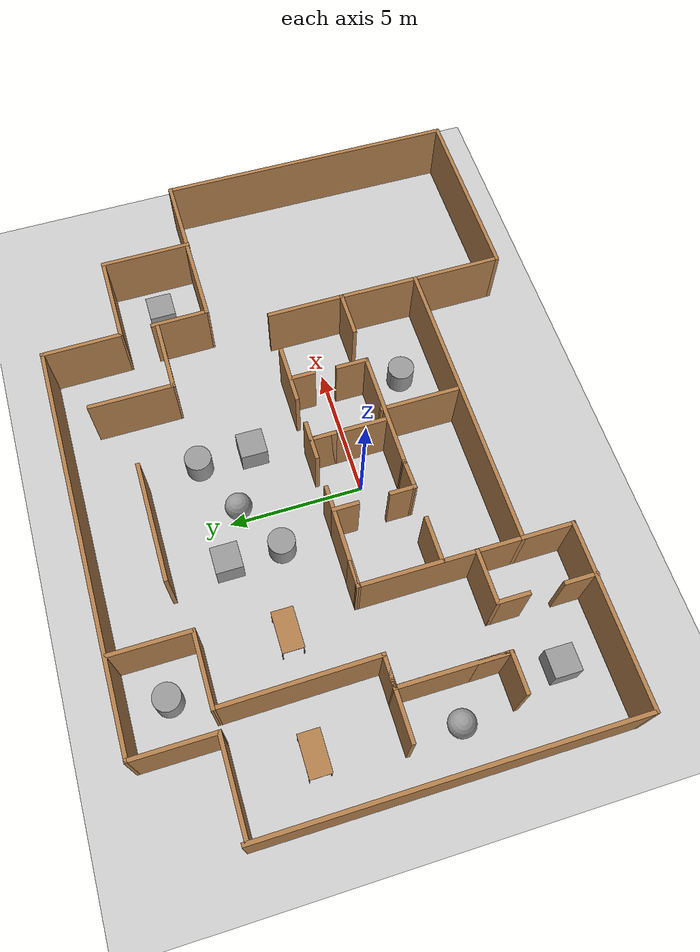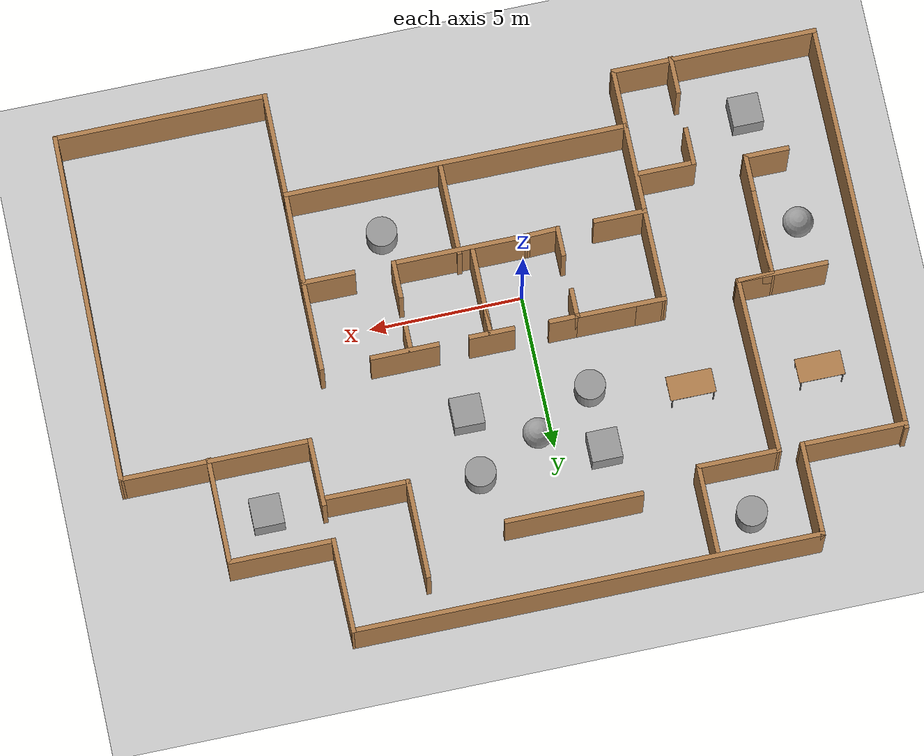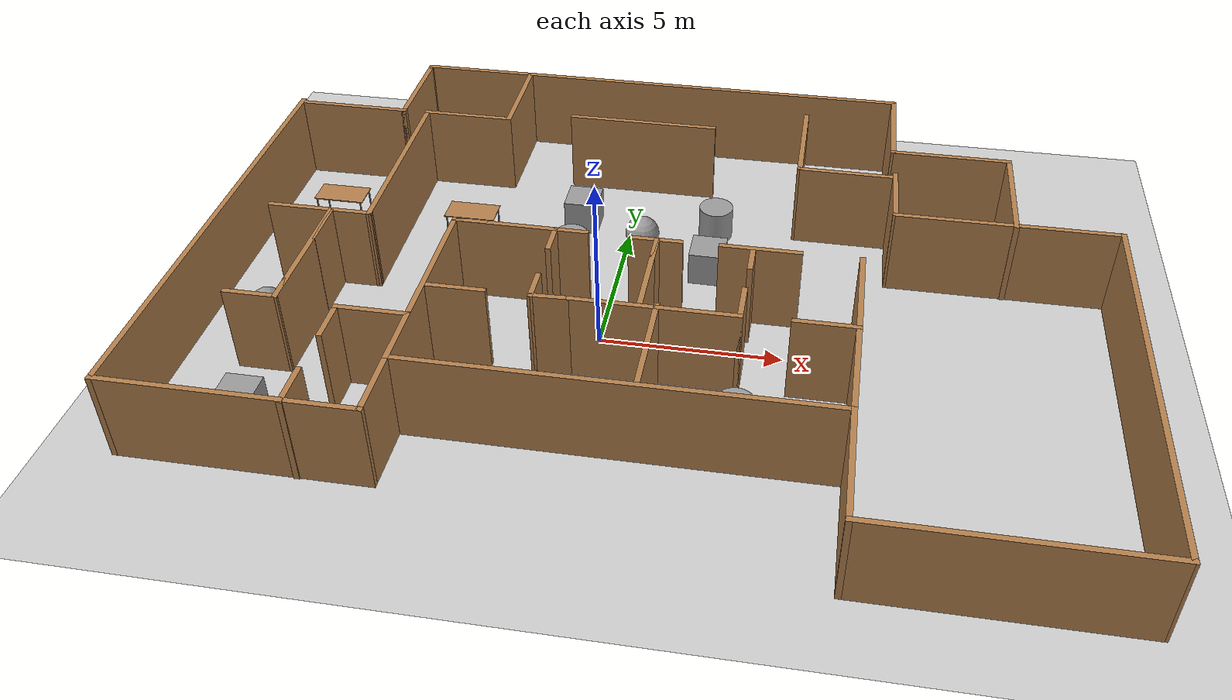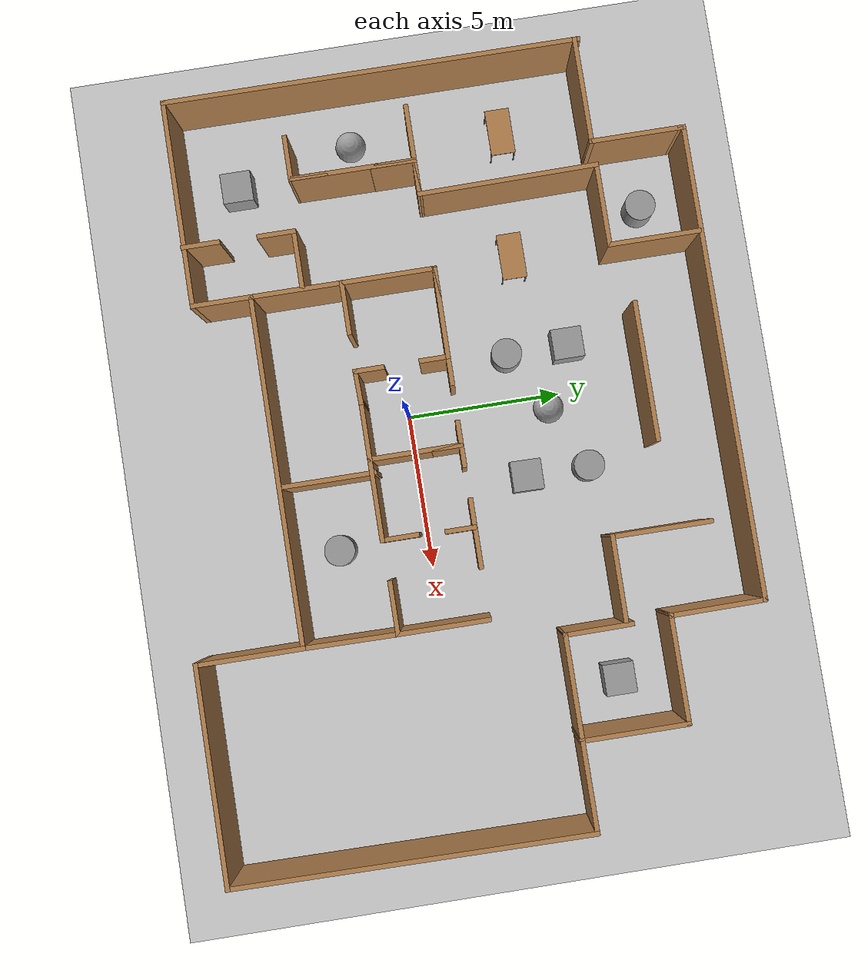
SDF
<sdf version="1.7">
 <world name="default">
  <light name="sun" type="directional">
   <pose>0 0 10 0 -0 0</pose>
   <diffuse>0.8 0.8 0.8 1</diffuse>
   <specular>0.2 0.2 0.2 1</specular>
   <attenuation>
    <range>1000</range>
    <constant>0.9</constant>
    <linear>0.01</linear>
    <quadratic>0.001</quadratic>
   </attenuation>
   <direction>-0.5 0.1 -0.9</direction>
   <spot><inner_angle>0</inner_angle><outer_angle>0</outer_angle><falloff>0</falloff></spot>
  </light>
  <model name="ground_plane">
   <static>1</static>
   <link name="link">
    <collision name="collision">
     <geometry><plane><normal>0 0 1</normal><size>100 100</size></plane></geometry>
     <surface>
      <contact><collide_bitmask>65535</collide_bitmask></contact>
      <friction><ode><mu>100</mu><mu2>50</mu2></ode></friction>
     </surface>
    </collision>
    <visual name="visual">
     <cast_shadows>0</cast_shadows>
     <geometry><plane><normal>0 0 1</normal><size>100 100</size></plane></geometry>
     <material>
      <script><uri>file://media/materials/scripts/gazebo.material</uri><name>Gazebo/Grey</name></script>
     </material>
    </visual>
   </link>
  </model>
  <gravity>0 0 -9.8</gravity>
  <magnetic_field>6e-06 2.3e-05 -4.2e-05</magnetic_field>
  <atmosphere type="adiabatic"/>
  <physics type="ode">
   <max_step_size>0.001</max_step_size>
   <real_time_factor>1</real_time_factor>
   <real_time_update_rate>1000</real_time_update_rate>
  </physics>
  <scene><ambient>0.4 0.4 0.4 1</ambient><background>0.7 0.7 0.7 1</background><shadows>1</shadows></scene>
  <spherical_coordinates>
   <surface_model>EARTH_WGS84</surface_model>
   <latitude_deg>0</latitude_deg>
   <longitude_deg>0</longitude_deg>
   <elevation>0</elevation>
   <heading_deg>0</heading_deg>
  </spherical_coordinates>
  <audio><device>default</device></audio>
  <model name="kkbot_world">
   <pose>1.44254 1.20064 0 0 -0 0</pose>
   <link name="Wall_102">
    <collision name="Wall_102_Collision">
     <geometry><box><size>4.5 0.15 2.5</size></box></geometry>
     <pose>0 0 1.25 0 -0 0</pose>
    </collision>
    <visual name="Wall_102_Visual">
     <pose>0 0 1.25 0 -0 0</pose>
     <geometry><box><size>4.5 0.15 2.5</size></box></geometry>
     <material>
      <script><uri>file://media/materials/scripts/gazebo.material</uri><name>Gazebo/Wood</name></script>
      <ambient>1 1 1 1</ambient>
     </material>
     <meta><layer>0</layer></meta>
    </visual>
    <pose>0.28317 -2.57842 0 0 -0 0</pose>
   </link>
   <link name="Wall_104">
    <collision name="Wall_104_Collision">
     <geometry><box><size>1.75 0.15 2.5</size></box></geometry>
     <pose>0 0 1.25 0 -0 0</pose>
    </collision>
    <visual name="Wall_104_Visual">
     <pose>0 0 1.25 0 -0 0</pose>
     <geometry><box><size>1.75 0.15 2.5</size></box></geometry>
     <material>
      <script><uri>file://media/materials/scripts/gazebo.material</uri><name>Gazebo/Wood</name></script>
      <ambient>1 1 1 1</ambient>
     </material>
     <meta><layer>0</layer></meta>
    </visual>
    <pose>4.59827 -2.53719 0 0 -0 0</pose>
   </link>
   <link name="Wall_105">
    <collision name="Wall_105_Collision">
     <geometry><box><size>3 0.15 2.5</size></box></geometry>
     <pose>0 0 1.25 0 -0 0</pose>
    </collision>
    <visual name="Wall_105_Visual">
     <pose>0 0 1.25 0 -0 0</pose>
     <geometry><box><size>3 0.15 2.5</size></box></geometry>
     <material>
      <script><uri>file://media/materials/scripts/gazebo.material</uri><name>Gazebo/Wood</name></script>
      <ambient>1 1 1 1</ambient>
     </material>
     <meta><layer>0</layer></meta>
    </visual>
    <pose>5.39827 -1.11218 0 0 -0 1.5708</pose>
   </link>
   <link name="Wall_107">
    <collision name="Wall_107_Collision">
     <geometry><box><size>2.25 0.15 2.5</size></box></geometry>
     <pose>0 0 1.25 0 -0 0</pose>
    </collision>
    <visual name="Wall_107_Visual">
     <pose>0 0 1.25 0 -0 0</pose>
     <geometry><box><size>2.25 0.15 2.5</size></box></geometry>
     <material>
      <script><uri>file://media/materials/scripts/gazebo.material</uri><name>Gazebo/Wood</name></script>
      <ambient>1 1 1 1</ambient>
     </material>
     <meta><layer>0</layer></meta>
    </visual>
    <pose>2.70417 0.32848 0 0 -0 0</pose>
   </link>
   <link name="Wall_113">
    <collision name="Wall_113_Collision">
     <geometry><box><size>1 0.15 2.5</size></box></geometry>
     <pose>0 0 1.25 0 -0 0</pose>
    </collision>
    <visual name="Wall_113_Visual">
     <pose>0 0 1.25 0 -0 0</pose>
     <geometry><box><size>1 0.15 2.5</size></box></geometry>
     <material>
      <script><uri>file://media/materials/scripts/gazebo.material</uri><name>Gazebo/Wood</name></script>
      <ambient>1 1 1 1</ambient>
     </material>
     <meta><layer>0</layer></meta>
    </visual>
    <pose>-2.89655 -0.091787 0 0 -0 -1.5708</pose>
   </link>
   <link name="Wall_115">
    <collision name="Wall_115_Collision">
     <geometry><box><size>1 0.15 2.5</size></box></geometry>
     <pose>0 0 1.25 0 -0 0</pose>
    </collision>
    <visual name="Wall_115_Visual">
     <pose>0 0 1.25 0 -0 0</pose>
     <geometry><box><size>1 0.15 2.5</size></box></geometry>
     <material>
      <script><uri>file://media/materials/scripts/gazebo.material</uri><name>Gazebo/Wood</name></script>
      <ambient>1 1 1 1</ambient>
     </material>
     <meta><layer>0</layer></meta>
    </visual>
    <pose>-0.090895 -0.13829 0 0 -0 -1.5708</pose>
   </link>
   <link name="Wall_117">
    <collision name="Wall_117_Collision">
     <geometry><box><size>1 0.15 2.5</size></box></geometry>
     <pose>0 0 1.25 0 -0 0</pose>
    </collision>
    <visual name="Wall_117_Visual">
     <pose>0 0 1.25 0 -0 0</pose>
     <geometry><box><size>1 0.15 2.5</size></box></geometry>
     <material>
      <script><uri>file://media/materials/scripts/gazebo.material</uri><name>Gazebo/Wood</name></script>
      <ambient>1 1 1 1</ambient>
     </material>
     <meta><layer>0</layer></meta>
    </visual>
    <pose>2.5055 -0.115038 0 0 -0 -1.5708</pose>
   </link>
   <link name="Wall_119">
    <collision name="Wall_119_Collision">
     <geometry><box><size>1 0.15 2.5</size></box></geometry>
     <pose>0 0 1.25 0 -0 0</pose>
    </collision>
    <visual name="Wall_119_Visual">
     <pose>0 0 1.25 0 -0 0</pose>
     <geometry><box><size>1 0.15 2.5</size></box></geometry>
     <material>
      <script><uri>file://media/materials/scripts/gazebo.material</uri><name>Gazebo/Wood</name></script>
      <ambient>1 1 1 1</ambient>
     </material>
     <meta><layer>0</layer></meta>
    </visual>
    <pose>-2.8888 -2.18695 0 0 -0 1.5708</pose>
   </link>
   <link name="Wall_121">
    <collision name="Wall_121_Collision">
     <geometry><box><size>3.00216 0.15 2.5</size></box></geometry>
     <pose>0 0 1.25 0 -0 0</pose>
    </collision>
    <visual name="Wall_121_Visual">
     <pose>0 0 1.25 0 -0 0</pose>
     <geometry><box><size>3.00216 0.15 2.5</size></box></geometry>
     <material>
      <script><uri>file://media/materials/scripts/gazebo.material</uri><name>Gazebo/Wood</name></script>
      <ambient>1 1 1 1</ambient>
     </material>
     <meta><layer>0</layer></meta>
    </visual>
    <pose>-0.090895 -1.13937 0 0 -0 1.5708</pose>
   </link>
   <link name="Wall_125">
    <collision name="Wall_125_Collision">
     <geometry><box><size>1.25 0.15 2.5</size></box></geometry>
     <pose>0 0 1.25 0 -0 0</pose>
    </collision>
    <visual name="Wall_125_Visual">
     <pose>0 0 1.25 0 -0 0</pose>
     <geometry><box><size>1.25 0.15 2.5</size></box></geometry>
     <material>
      <script><uri>file://media/materials/scripts/gazebo.material</uri><name>Gazebo/Wood</name></script>
      <ambient>1 1 1 1</ambient>
     </material>
     <meta><layer>0</layer></meta>
    </visual>
    <pose>2.45817 -2.02842 0 0 -0 1.5708</pose>
   </link>
   <link name="Wall_127">
    <collision name="Wall_127_Collision">
     <geometry><box><size>1.5 0.15 2.5</size></box></geometry>
     <pose>0 0 1.25 0 -0 0</pose>
    </collision>
    <visual name="Wall_127_Visual">
     <pose>0 0 1.25 0 -0 0</pose>
     <geometry><box><size>1.5 0.15 2.5</size></box></geometry>
     <material>
      <script><uri>file://media/materials/scripts/gazebo.material</uri><name>Gazebo/Wood</name></script>
      <ambient>1 1 1 1</ambient>
     </material>
     <meta><layer>0</layer></meta>
    </visual>
    <pose>-0.128935 0.309962 0 0 -0 0</pose>
   </link>
   <link name="Wall_132">
    <collision name="Wall_132_Collision">
     <geometry><box><size>1.75 0.15 2.5</size></box></geometry>
     <pose>0 0 1.25 0 -0 0</pose>
    </collision>
    <visual name="Wall_132_Visual">
     <pose>0 0 1.25 0 -0 0</pose>
     <geometry><box><size>1.75 0.15 2.5</size></box></geometry>
     <material>
      <script><uri>file://media/materials/scripts/gazebo.material</uri><name>Gazebo/Wood</name></script>
      <ambient>1 1 1 1</ambient>
     </material>
     <meta><layer>0</layer></meta>
    </visual>
    <pose>-4.92622 -2.60969 0 0 -0 0</pose>
   </link>
   <link name="Wall_135">
    <collision name="Wall_135_Collision">
     <geometry><box><size>1.14753 0.15 2.5</size></box></geometry>
     <pose>0 0 1.25 0 -0 0</pose>
    </collision>
    <visual name="Wall_135_Visual">
     <pose>0 0 1.25 0 -0 0</pose>
     <geometry><box><size>1.14753 0.15 2.5</size></box></geometry>
     <material>
      <script><uri>file://media/materials/scripts/gazebo.material</uri><name>Gazebo/Wood</name></script>
      <ambient>1 1 1 1</ambient>
     </material>
     <meta><layer>0</layer></meta>
    </visual>
    <pose>-2.39032 -2.59518 0 0 -0 0.033621</pose>
   </link>
   <link name="Wall_137">
    <collision name="Wall_137_Collision">
     <geometry><box><size>2.98342 0.15 2.5</size></box></geometry>
     <pose>0 0 1.25 0 -0 0</pose>
    </collision>
    <visual name="Wall_137_Visual">
     <pose>0 0 1.25 0 -0 0</pose>
     <geometry><box><size>2.98342 0.15 2.5</size></box></geometry>
     <material>
      <script><uri>file://media/materials/scripts/gazebo.material</uri><name>Gazebo/Wood</name></script>
      <ambient>1 1 1 1</ambient>
     </material>
     <meta><layer>0</layer></meta>
    </visual>
    <pose>-4.31323 0.341621 0 0 -0 -0.005935</pose>
   </link>
   <link name="Wall_139">
    <collision name="Wall_139_Collision">
     <geometry><box><size>1 0.15 2.5</size></box></geometry>
     <pose>0 0 1.25 0 -0 0</pose>
    </collision>
    <visual name="Wall_139_Visual">
     <pose>0 0 1.25 0 -0 0</pose>
     <geometry><box><size>1 0.15 2.5</size></box></geometry>
     <material>
      <script><uri>file://media/materials/scripts/gazebo.material</uri><name>Gazebo/Wood</name></script>
      <ambient>1 1 1 1</ambient>
     </material>
     <meta><layer>0</layer></meta>
    </visual>
    <pose>-2.47155 0.333213 0 0 -0 0</pose>
   </link>
   <link name="Wall_146">
    <collision name="Wall_146_Collision">
     <geometry><box><size>3.5 0.15 2.5</size></box></geometry>
     <pose>0 0 1.25 0 -0 0</pose>
    </collision>
    <visual name="Wall_146_Visual">
     <pose>0 0 1.25 0 -0 0</pose>
     <geometry><box><size>3.5 0.15 2.5</size></box></geometry>
     <material>
      <script><uri>file://media/materials/scripts/gazebo.material</uri><name>Gazebo/Wood</name></script>
      <ambient>1 1 1 1</ambient>
     </material>
     <meta><layer>0</layer></meta>
    </visual>
    <pose>7.82117 5.88656 0 0 -0 0</pose>
   </link>
   <link name="Wall_147">
    <collision name="Wall_147_Collision">
     <geometry><box><size>3.5 0.15 2.5</size></box></geometry>
     <pose>0 0 1.25 0 -0 0</pose>
    </collision>
    <visual name="Wall_147_Visual">
     <pose>0 0 1.25 0 -0 0</pose>
     <geometry><box><size>3.5 0.15 2.5</size></box></geometry>
     <material>
      <script><uri>file://media/materials/scripts/gazebo.material</uri><name>Gazebo/Wood</name></script>
      <ambient>1 1 1 1</ambient>
     </material>
     <meta><layer>0</layer></meta>
    </visual>
    <pose>9.49617 4.21156 0 0 -0 -1.5708</pose>
   </link>
   <link name="Wall_149">
    <collision name="Wall_149_Collision">
     <geometry><box><size>6.25 0.15 2.5</size></box></geometry>
     <pose>0 0 1.25 0 -0 0</pose>
    </collision>
    <visual name="Wall_149_Visual">
     <pose>0 0 1.25 0 -0 0</pose>
     <geometry><box><size>6.25 0.15 2.5</size></box></geometry>
     <material>
      <script><uri>file://media/materials/scripts/gazebo.material</uri><name>Gazebo/Wood</name></script>
      <ambient>1 1 1 1</ambient>
     </material>
     <meta><layer>0</layer></meta>
    </visual>
    <pose>9.2792 2.56238 0 0 -0 0</pose>
   </link>
   <link name="Wall_151">
    <collision name="Wall_151_Collision">
     <geometry><box><size>3.11359 0.15 2.5</size></box></geometry>
     <pose>0 0 1.25 0 -0 0</pose>
    </collision>
    <visual name="Wall_151_Visual">
     <pose>0 0 1.25 0 -0 0</pose>
     <geometry><box><size>3.11359 0.15 2.5</size></box></geometry>
     <material>
      <script><uri>file://media/materials/scripts/gazebo.material</uri><name>Gazebo/Wood</name></script>
      <ambient>1 1 1 1</ambient>
     </material>
     <meta><layer>0</layer></meta>
    </visual>
    <pose>6.13313 7.36829 0 0 -0 -1.56199</pose>
   </link>
   <link name="Wall_153">
    <collision name="Wall_153_Collision">
     <geometry><box><size>2.24219 0.15 2.5</size></box></geometry>
     <pose>0 0 1.25 0 -0 0</pose>
    </collision>
    <visual name="Wall_153_Visual">
     <pose>0 0 1.25 0 -0 0</pose>
     <geometry><box><size>2.24219 0.15 2.5</size></box></geometry>
     <material>
      <script><uri>file://media/materials/scripts/gazebo.material</uri><name>Gazebo/Wood</name></script>
      <ambient>1 1 1 1</ambient>
     </material>
     <meta><layer>0</layer></meta>
    </visual>
    <pose>6.21979 3.60844 0 0 -0 -1.56179</pose>
   </link>
   <link name="Wall_155">
    <collision name="Wall_155_Collision">
     <geometry><box><size>2.76359 0.15 2.5</size></box></geometry>
     <pose>0 0 1.25 0 -0 0</pose>
    </collision>
    <visual name="Wall_155_Visual">
     <pose>0 0 1.25 0 -0 0</pose>
     <geometry><box><size>2.76359 0.15 2.5</size></box></geometry>
     <material>
      <script><uri>file://media/materials/scripts/gazebo.material</uri><name>Gazebo/Wood</name></script>
      <ambient>1 1 1 1</ambient>
     </material>
     <meta><layer>0</layer></meta>
    </visual>
    <pose>4.76923 4.4969 0 0 -0 -0.005187</pose>
   </link>
   <link name="Wall_157">
    <collision name="Wall_157_Collision">
     <geometry><box><size>3.25 0.15 2.5</size></box></geometry>
     <pose>0 0 1.25 0 -0 0</pose>
    </collision>
    <visual name="Wall_157_Visual">
     <pose>0 0 1.25 0 -0 0</pose>
     <geometry><box><size>3.25 0.15 2.5</size></box></geometry>
     <material>
      <script><uri>file://media/materials/scripts/gazebo.material</uri><name>Gazebo/Wood</name></script>
      <ambient>1 1 1 1</ambient>
     </material>
     <meta><layer>0</layer></meta>
    </visual>
    <pose>3.46245 6.05368 0 0 -0 1.5708</pose>
   </link>
   <link name="Wall_159">
    <collision name="Wall_159_Collision">
     <geometry><box><size>2.75 0.15 2.5</size></box></geometry>
     <pose>0 0 1.25 0 -0 0</pose>
    </collision>
    <visual name="Wall_159_Visual">
     <pose>0 0 1.25 0 -0 0</pose>
     <geometry><box><size>2.75 0.15 2.5</size></box></geometry>
     <material>
      <script><uri>file://media/materials/scripts/gazebo.material</uri><name>Gazebo/Wood</name></script>
      <ambient>1 1 1 1</ambient>
     </material>
     <meta><layer>0</layer></meta>
    </visual>
    <pose>-6.91617 5.92406 0 0 -0 0</pose>
   </link>
   <link name="Wall_160">
    <collision name="Wall_160_Collision">
     <geometry><box><size>3 0.15 2.5</size></box></geometry>
     <pose>0 0 1.25 0 -0 0</pose>
    </collision>
    <visual name="Wall_160_Visual">
     <pose>0 0 1.25 0 -0 0</pose>
     <geometry><box><size>3 0.15 2.5</size></box></geometry>
     <material>
      <script><uri>file://media/materials/scripts/gazebo.material</uri><name>Gazebo/Wood</name></script>
      <ambient>1 1 1 1</ambient>
     </material>
     <meta><layer>0</layer></meta>
    </visual>
    <pose>-5.61617 7.34907 0 0 -0 1.5708</pose>
   </link>
   <link name="Wall_164">
    <collision name="Wall_164_Collision">
     <geometry><box><size>5.82064 0.15 2.5</size></box></geometry>
     <pose>0 0 1.25 0 -0 0</pose>
    </collision>
    <visual name="Wall_164_Visual">
     <pose>0 0 1.25 0 -0 0</pose>
     <geometry><box><size>5.82064 0.15 2.5</size></box></geometry>
     <material>
      <script><uri>file://media/materials/scripts/gazebo.material</uri><name>Gazebo/Wood</name></script>
      <ambient>1 1 1 1</ambient>
     </material>
     <meta><layer>0</layer></meta>
    </visual>
    <pose>-8.1856 3.08891 0 0 -0 -1.56001</pose>
   </link>
   <link name="Wall_165">
    <collision name="Wall_165_Collision">
     <geometry><box><size>3 0.15 2.5</size></box></geometry>
     <pose>0 0 1.25 0 -0 0</pose>
    </collision>
    <visual name="Wall_165_Visual">
     <pose>0 0 1.25 0 -0 0</pose>
     <geometry><box><size>3 0.15 2.5</size></box></geometry>
     <material>
      <script><uri>file://media/materials/scripts/gazebo.material</uri><name>Gazebo/Wood</name></script>
      <ambient>1 1 1 1</ambient>
     </material>
     <meta><layer>0</layer></meta>
    </visual>
    <pose>-9.58003 0.253755 0 0 -0 3.14159</pose>
   </link>
   <link name="Wall_167">
    <collision name="Wall_167_Collision">
     <geometry><box><size>4.10736 0.15 2.5</size></box></geometry>
     <pose>0 0 1.25 0 -0 0</pose>
    </collision>
    <visual name="Wall_167_Visual">
     <pose>0 0 1.25 0 -0 0</pose>
     <geometry><box><size>4.10736 0.15 2.5</size></box></geometry>
     <material>
      <script><uri>file://media/materials/scripts/gazebo.material</uri><name>Gazebo/Wood</name></script>
      <ambient>1 1 1 1</ambient>
     </material>
     <meta><layer>0</layer></meta>
    </visual>
    <pose>-9.26124 -1.72492 0 0 -0 -1.57394</pose>
   </link>
   <link name="Wall_168">
    <collision name="Wall_168_Collision">
     <geometry><box><size>1.5 0.15 2.5</size></box></geometry>
     <pose>0 0 1.25 0 -0 0</pose>
    </collision>
    <visual name="Wall_168_Visual">
     <pose>0 0 1.25 0 -0 0</pose>
     <geometry><box><size>1.5 0.15 2.5</size></box></geometry>
     <material>
      <script><uri>file://media/materials/scripts/gazebo.material</uri><name>Gazebo/Wood</name></script>
      <ambient>1 1 1 1</ambient>
     </material>
     <meta><layer>0</layer></meta>
    </visual>
    <pose>-9.94246 -3.70359 0 0 -0 3.14159</pose>
   </link>
   <link name="Wall_171">
    <collision name="Wall_171_Collision">
     <geometry><box><size>3 0.15 2.5</size></box></geometry>
     <pose>0 0 1.25 0 -0 0</pose>
    </collision>
    <visual name="Wall_171_Visual">
     <pose>0 0 1.25 0 -0 0</pose>
     <geometry><box><size>3 0.15 2.5</size></box></geometry>
     <material>
      <script><uri>file://media/materials/scripts/gazebo.material</uri><name>Gazebo/Wood</name></script>
      <ambient>1 1 1 1</ambient>
     </material>
     <meta><layer>0</layer></meta>
    </visual>
    <pose>0.341386 -3.92199 0 0 -0 -1.5708</pose>
   </link>
   <link name="Wall_173">
    <collision name="Wall_173_Collision">
     <geometry><box><size>3.11292 0.15 2.5</size></box></geometry>
     <pose>0 0 1.25 0 -0 0</pose>
    </collision>
    <visual name="Wall_173_Visual">
     <pose>0 0 1.25 0 -0 0</pose>
     <geometry><box><size>3.11292 0.15 2.5</size></box></geometry>
     <material>
      <script><uri>file://media/materials/scripts/gazebo.material</uri><name>Gazebo/Wood</name></script>
      <ambient>1 1 1 1</ambient>
     </material>
     <meta><layer>0</layer></meta>
    </visual>
    <pose>5.38417 -4.01858 0 0 -0 1.56128</pose>
   </link>
   <link name="Wall_175">
    <collision name="Wall_175_Collision">
     <geometry><box><size>4.5 0.15 2.5</size></box></geometry>
     <pose>0 0 1.25 0 -0 0</pose>
    </collision>
    <visual name="Wall_175_Visual">
     <pose>0 0 1.25 0 -0 0</pose>
     <geometry><box><size>4.5 0.15 2.5</size></box></geometry>
     <material>
      <script><uri>file://media/materials/scripts/gazebo.material</uri><name>Gazebo/Wood</name></script>
      <ambient>1 1 1 1</ambient>
     </material>
     <meta><layer>0</layer></meta>
    </visual>
    <pose>-1.49044 6.40325 0 0 -0 0</pose>
   </link>
   <link name="Wall_70">
    <collision name="Wall_70_Collision">
     <geometry><box><size>3.5 0.15 2.5</size></box></geometry>
     <pose>0 0 1.25 0 -0 0</pose>
    </collision>
    <visual name="Wall_70_Visual">
     <pose>0 0 1.25 0 -0 0</pose>
     <geometry><box><size>3.5 0.15 2.5</size></box></geometry>
     <material>
      <script><uri>file://media/materials/scripts/gazebo.material</uri><name>Gazebo/Wood</name></script>
      <ambient>1 1 1 1</ambient>
     </material>
     <meta><layer>0</layer></meta>
    </visual>
    <pose>-10.6549 5.90003 0 0 -0 0</pose>
   </link>
   <link name="Wall_71">
    <collision name="Wall_71_Collision">
     <geometry><box><size>3 0.15 2.5</size></box></geometry>
     <pose>0 0 1.25 0 -0 0</pose>
    </collision>
    <visual name="Wall_71_Visual">
     <pose>0 0 1.25 0 -0 0</pose>
     <geometry><box><size>3 0.15 2.5</size></box></geometry>
     <material>
      <script><uri>file://media/materials/scripts/gazebo.material</uri><name>Gazebo/Wood</name></script>
      <ambient>1 1 1 1</ambient>
     </material>
     <meta><layer>0</layer></meta>
    </visual>
    <pose>-8.97992 7.32503 0 0 -0 1.5708</pose>
   </link>
   <link name="Wall_72">
    <collision name="Wall_72_Collision">
     <geometry><box><size>0.25 0.15 2.5</size></box></geometry>
     <pose>0 0 1.25 0 -0 0</pose>
    </collision>
    <visual name="Wall_72_Visual">
     <pose>0 0 1.25 0 -0 0</pose>
     <geometry><box><size>0.25 0.15 2.5</size></box></geometry>
     <material>
      <script><uri>file://media/materials/scripts/gazebo.material</uri><name>Gazebo/Wood</name></script>
      <ambient>1 1 1 1</ambient>
     </material>
     <meta><layer>0</layer></meta>
    </visual>
    <pose>-8.97992 8.80003 0 0 -0 1.5708</pose>
   </link>
   <link name="Wall_73">
    <collision name="Wall_73_Collision">
     <geometry><box><size>15.25 0.15 2.5</size></box></geometry>
     <pose>0 0 1.25 0 -0 0</pose>
    </collision>
    <visual name="Wall_73_Visual">
     <pose>0 0 1.25 0 -0 0</pose>
     <geometry><box><size>15.25 0.15 2.5</size></box></geometry>
     <material>
      <script><uri>file://media/materials/scripts/gazebo.material</uri><name>Gazebo/Wood</name></script>
      <ambient>1 1 1 1</ambient>
     </material>
     <meta><layer>0</layer></meta>
    </visual>
    <pose>-1.42992 8.85003 0 0 -0 0</pose>
   </link>
   <link name="Wall_76">
    <collision name="Wall_76_Collision">
     <geometry><box><size>11.5629 0.15 2.5</size></box></geometry>
     <pose>0 0 1.25 0 -0 0</pose>
    </collision>
    <visual name="Wall_76_Visual">
     <pose>0 0 1.25 0 -0 0</pose>
     <geometry><box><size>11.5629 0.15 2.5</size></box></geometry>
     <material>
      <script><uri>file://media/materials/scripts/gazebo.material</uri><name>Gazebo/Wood</name></script>
      <ambient>1 1 1 1</ambient>
     </material>
     <meta><layer>0</layer></meta>
    </visual>
    <pose>12.2746 -3.14379 0 0 -0 -1.58036</pose>
   </link>
   <link name="Wall_77">
    <collision name="Wall_77_Collision">
     <geometry><box><size>7 0.15 2.5</size></box></geometry>
     <pose>0 0 1.25 0 -0 0</pose>
    </collision>
    <visual name="Wall_77_Visual">
     <pose>0 0 1.25 0 -0 0</pose>
     <geometry><box><size>7 0.15 2.5</size></box></geometry>
     <material>
      <script><uri>file://media/materials/scripts/gazebo.material</uri><name>Gazebo/Wood</name></script>
      <ambient>1 1 1 1</ambient>
     </material>
     <meta><layer>0</layer></meta>
    </visual>
    <pose>8.79508 -8.84997 0 0 -0 3.14159</pose>
   </link>
   <link name="Wall_78">
    <collision name="Wall_78_Collision">
     <geometry><box><size>3.5 0.15 2.5</size></box></geometry>
     <pose>0 0 1.25 0 -0 0</pose>
    </collision>
    <visual name="Wall_78_Visual">
     <pose>0 0 1.25 0 -0 0</pose>
     <geometry><box><size>3.5 0.15 2.5</size></box></geometry>
     <material>
      <script><uri>file://media/materials/scripts/gazebo.material</uri><name>Gazebo/Wood</name></script>
      <ambient>1 1 1 1</ambient>
     </material>
     <meta><layer>0</layer></meta>
    </visual>
    <pose>5.37008 -7.17497 0 0 -0 1.5708</pose>
   </link>
   <link name="Wall_79">
    <collision name="Wall_79_Collision">
     <geometry><box><size>11.25 0.15 2.5</size></box></geometry>
     <pose>0 0 1.25 0 -0 0</pose>
    </collision>
    <visual name="Wall_79_Visual">
     <pose>0 0 1.25 0 -0 0</pose>
     <geometry><box><size>11.25 0.15 2.5</size></box></geometry>
     <material>
      <script><uri>file://media/materials/scripts/gazebo.material</uri><name>Gazebo/Wood</name></script>
      <ambient>1 1 1 1</ambient>
     </material>
     <meta><layer>0</layer></meta>
    </visual>
    <pose>-0.179918 -5.49997 0 0 -0 3.14159</pose>
   </link>
   <link name="Wall_80">
    <collision name="Wall_80_Collision">
     <geometry><box><size>2 0.15 2.5</size></box></geometry>
     <pose>0 0 1.25 0 -0 0</pose>
    </collision>
    <visual name="Wall_80_Visual">
     <pose>0 0 1.25 0 -0 0</pose>
     <geometry><box><size>2 0.15 2.5</size></box></geometry>
     <material>
      <script><uri>file://media/materials/scripts/gazebo.material</uri><name>Gazebo/Wood</name></script>
      <ambient>1 1 1 1</ambient>
     </material>
     <meta><layer>0</layer></meta>
    </visual>
    <pose>-5.72992 -6.42497 0 0 -0 -1.5708</pose>
   </link>
   <link name="Wall_81">
    <collision name="Wall_81_Collision">
     <geometry><box><size>6.75 0.15 2.5</size></box></geometry>
     <pose>0 0 1.25 0 -0 0</pose>
    </collision>
    <visual name="Wall_81_Visual">
     <pose>0 0 1.25 0 -0 0</pose>
     <geometry><box><size>6.75 0.15 2.5</size></box></geometry>
     <material>
      <script><uri>file://media/materials/scripts/gazebo.material</uri><name>Gazebo/Wood</name></script>
      <ambient>1 1 1 1</ambient>
     </material>
     <meta><layer>0</layer></meta>
    </visual>
    <pose>-9.02992 -7.34997 0 0 -0 3.14159</pose>
   </link>
   <link name="Wall_82">
    <collision name="Wall_82_Collision">
     <geometry><box><size>13.5 0.15 2.5</size></box></geometry>
     <pose>0 0 1.25 0 -0 0</pose>
    </collision>
    <visual name="Wall_82_Visual">
     <pose>0 0 1.25 0 -0 0</pose>
     <geometry><box><size>13.5 0.15 2.5</size></box></geometry>
     <material>
      <script><uri>file://media/materials/scripts/gazebo.material</uri><name>Gazebo/Wood</name></script>
      <ambient>1 1 1 1</ambient>
     </material>
     <meta><layer>0</layer></meta>
    </visual>
    <pose>-12.3299 -0.674971 0 0 -0 1.5708</pose>
   </link>
   <link name="Wall_85">
    <collision name="Wall_85_Collision">
     <geometry><box><size>1.25 0.15 2.5</size></box></geometry>
     <pose>0 0 1.25 0 -0 0</pose>
    </collision>
    <visual name="Wall_85_Visual">
     <pose>0 0 1.25 0 -0 0</pose>
     <geometry><box><size>1.25 0.15 2.5</size></box></geometry>
     <material>
      <script><uri>file://media/materials/scripts/gazebo.material</uri><name>Gazebo/Wood</name></script>
      <ambient>1 1 1 1</ambient>
     </material>
     <meta><layer>0</layer></meta>
    </visual>
    <pose>-8.70503 0.253755 0 0 -0 3.14159</pose>
   </link>
   <link name="Wall_86">
    <collision name="Wall_86_Collision">
     <geometry><box><size>1.5 0.15 2.5</size></box></geometry>
     <pose>0 0 1.25 0 -0 0</pose>
    </collision>
    <visual name="Wall_86_Visual">
     <pose>0 0 1.25 0 -0 0</pose>
     <geometry><box><size>1.5 0.15 2.5</size></box></geometry>
     <material>
      <script><uri>file://media/materials/scripts/gazebo.material</uri><name>Gazebo/Wood</name></script>
      <ambient>1 1 1 1</ambient>
     </material>
     <meta><layer>0</layer></meta>
    </visual>
    <pose>-9.25503 -0.421245 0 0 -0 -1.5708</pose>
   </link>
   <link name="Wall_89">
    <collision name="Wall_89_Collision">
     <geometry><box><size>1.25 0.15 2.5</size></box></geometry>
     <pose>0 0 1.25 0 -0 0</pose>
    </collision>
    <visual name="Wall_89_Visual">
     <pose>0 0 1.25 0 -0 0</pose>
     <geometry><box><size>1.25 0.15 2.5</size></box></geometry>
     <material>
      <script><uri>file://media/materials/scripts/gazebo.material</uri><name>Gazebo/Wood</name></script>
      <ambient>1 1 1 1</ambient>
     </material>
     <meta><layer>0</layer></meta>
    </visual>
    <pose>-9.26746 -3.15359 0 0 -0 1.5708</pose>
   </link>
   <link name="Wall_91">
    <collision name="Wall_91_Collision">
     <geometry><box><size>1.25 0.15 2.5</size></box></geometry>
     <pose>0 0 1.25 0 -0 0</pose>
    </collision>
    <visual name="Wall_91_Visual">
     <pose>0 0 1.25 0 -0 0</pose>
     <geometry><box><size>1.25 0.15 2.5</size></box></geometry>
     <material>
      <script><uri>file://media/materials/scripts/gazebo.material</uri><name>Gazebo/Wood</name></script>
      <ambient>1 1 1 1</ambient>
     </material>
     <meta><layer>0</layer></meta>
    </visual>
    <pose>-7.62371 -6.82848 0 0 -0 1.5708</pose>
   </link>
   <link name="Wall_93">
    <collision name="Wall_93_Collision">
     <geometry><box><size>2 0.15 2.5</size></box></geometry>
     <pose>0 0 1.25 0 -0 0</pose>
    </collision>
    <visual name="Wall_93_Visual">
     <pose>0 0 1.25 0 -0 0</pose>
     <geometry><box><size>2 0.15 2.5</size></box></geometry>
     <material>
      <script><uri>file://media/materials/scripts/gazebo.material</uri><name>Gazebo/Wood</name></script>
      <ambient>1 1 1 1</ambient>
     </material>
     <meta><layer>0</layer></meta>
    </visual>
    <pose>-6.67208 -3.85663 0 0 -0 3.14159</pose>
   </link>
   <link name="Wall_94">
    <collision name="Wall_94_Collision">
     <geometry><box><size>1.25 0.15 2.5</size></box></geometry>
     <pose>0 0 1.25 0 -0 0</pose>
    </collision>
    <visual name="Wall_94_Visual">
     <pose>0 0 1.25 0 -0 0</pose>
     <geometry><box><size>1.25 0.15 2.5</size></box></geometry>
     <material>
      <script><uri>file://media/materials/scripts/gazebo.material</uri><name>Gazebo/Wood</name></script>
      <ambient>1 1 1 1</ambient>
     </material>
     <meta><layer>0</layer></meta>
    </visual>
    <pose>-7.59708 -4.40663 0 0 -0 -1.5708</pose>
   </link>
   <link name="Wall_97">
    <collision name="Wall_97_Collision">
     <geometry><box><size>6 0.15 2.5</size></box></geometry>
     <pose>0 0 1.25 0 -0 0</pose>
    </collision>
    <visual name="Wall_97_Visual">
     <pose>0 0 1.25 0 -0 0</pose>
     <geometry><box><size>6 0.15 2.5</size></box></geometry>
     <material>
      <script><uri>file://media/materials/scripts/gazebo.material</uri><name>Gazebo/Wood</name></script>
      <ambient>1 1 1 1</ambient>
     </material>
     <meta><layer>0</layer></meta>
    </visual>
    <pose>-5.72992 -2.57497 0 0 -0 1.5708</pose>
   </link>
   <link name="Wall_98">
    <collision name="Wall_98_Collision">
     <geometry><box><size>1 0.15 2.5</size></box></geometry>
     <pose>0 0 1.25 0 -0 0</pose>
    </collision>
    <visual name="Wall_98_Visual">
     <pose>0 0 1.25 0 -0 0</pose>
     <geometry><box><size>1 0.15 2.5</size></box></geometry>
     <material>
      <script><uri>file://media/materials/scripts/gazebo.material</uri><name>Gazebo/Wood</name></script>
      <ambient>1 1 1 1</ambient>
     </material>
     <meta><layer>0</layer></meta>
    </visual>
    <pose>-5.30492 0.350029 0 0 -0 0</pose>
   </link>
   <static>1</static>
  </model>
  <model name="unit_box">
   <pose>2.54285 3.48225 0.499995 -1e-05 -0 -0.011427</pose>
   <link name="link">
    <inertial>
     <mass>1</mass>
     <inertia>
      <ixx>0.166667</ixx>
      <ixy>0</ixy>
      <ixz>0</ixz>
      <iyy>0.166667</iyy>
      <iyz>0</iyz>
      <izz>0.166667</izz>
     </inertia>
    </inertial>
    <collision name="collision"><geometry><box><size>1 1 1</size></box></geometry></collision>
    <visual name="visual">
     <geometry><box><size>1 1 1</size></box></geometry>
     <material>
      <script><name>Gazebo/Grey</name><uri>file://media/materials/scripts/gazebo.material</uri></script>
     </material>
    </visual>
   </link>
  </model>
  <model name="unit_sphere">
   <pose>0.444406 4.55374 0.5 0 -0 0</pose>
   <link name="link">
    <inertial>
     <mass>1</mass>
     <inertia><ixx>0.1</ixx><ixy>0</ixy><ixz>0</ixz><iyy>0.1</iyy><iyz>0</iyz><izz>0.1</izz></inertia>
    </inertial>
    <collision name="collision"><geometry><sphere><radius>0.5</radius></sphere></geometry></collision>
    <visual name="visual">
     <geometry><sphere><radius>0.5</radius></sphere></geometry>
     <material>
      <script><name>Gazebo/Grey</name><uri>file://media/materials/scripts/gazebo.material</uri></script>
     </material>
    </visual>
   </link>
  </model>
  <model name="unit_box_0">
   <pose>-1.51522 5.47434 0.499995 1e-05 -0 0</pose>
   <link name="link">
    <inertial>
     <mass>1</mass>
     <inertia>
      <ixx>0.166667</ixx>
      <ixy>0</ixy>
      <ixz>0</ixz>
      <iyy>0.166667</iyy>
      <iyz>0</iyz>
      <izz>0.166667</izz>
     </inertia>
    </inertial>
    <collision name="collision"><geometry><box><size>1 1 1</size></box></geometry></collision>
    <visual name="visual">
     <geometry><box><size>1 1 1</size></box></geometry>
     <material>
      <script><name>Gazebo/Grey</name><uri>file://media/materials/scripts/gazebo.material</uri></script>
     </material>
    </visual>
   </link>
  </model>
  <model name="unit_cylinder_0">
   <pose>2.52988 5.52767 0.499999 -1e-06 -1e-06 0</pose>
   <link name="link">
    <inertial>
     <mass>1</mass>
     <inertia><ixx>0.145833</ixx><ixy>0</ixy><ixz>0</ixz><iyy>0.145833</iyy><iyz>0</iyz><izz>0.125</izz></inertia>
    </inertial>
    <collision name="collision">
     <geometry><cylinder><radius>0.5</radius><length>1</length></cylinder></geometry>
    </collision>
    <visual name="visual">
     <geometry><cylinder><radius>0.5</radius><length>1</length></cylinder></geometry>
     <material>
      <script><name>Gazebo/Grey</name><uri>file://media/materials/scripts/gazebo.material</uri></script>
     </material>
    </visual>
   </link>
  </model>
  <model name="unit_cylinder_1">
   <pose>-1.48043 3.45342 0.499998 3e-06 -2e-06 0</pose>
   <link name="link">
    <inertial>
     <mass>1</mass>
     <inertia><ixx>0.145833</ixx><ixy>0</ixy><ixz>0</ixz><iyy>0.145833</iyy><iyz>0</iyz><izz>0.125</izz></inertia>
    </inertial>
    <collision name="collision">
     <geometry><cylinder><radius>0.5</radius><length>1</length></cylinder></geometry>
    </collision>
    <visual name="visual">
     <geometry><cylinder><radius>0.5</radius><length>1</length></cylinder></geometry>
     <material>
      <script><name>Gazebo/Grey</name><uri>file://media/materials/scripts/gazebo.material</uri></script>
     </material>
    </visual>
   </link>
  </model>
  <model name="table">
   <static>1</static>
   <link name="link">
    <collision name="surface">
     <pose>0 0 1 0 -0 0</pose>
     <geometry><box><size>1.5 0.8 0.03</size></box></geometry>
     <surface><friction><ode><mu>0.6</mu><mu2>0.6</mu2></ode></friction></surface>
    </collision>
    <visual name="visual1">
     <pose>0 0 1 0 -0 0</pose>
     <geometry><box><size>1.5 0.8 0.03</size></box></geometry>
     <material>
      <script><uri>file://media/materials/scripts/gazebo.material</uri><name>Gazebo/Wood</name></script>
     </material>
    </visual>
    <collision name="front_left_leg">
     <pose>0.68 0.38 0.5 0 -0 0</pose>
     <geometry><cylinder><radius>0.02</radius><length>1</length></cylinder></geometry>
    </collision>
    <visual name="front_left_leg">
     <pose>0.68 0.38 0.5 0 -0 0</pose>
     <geometry><cylinder><radius>0.02</radius><length>1</length></cylinder></geometry>
     <material>
      <script><uri>file://media/materials/scripts/gazebo.material</uri><name>Gazebo/Grey</name></script>
     </material>
    </visual>
    <collision name="front_right_leg">
     <pose>0.68 -0.38 0.5 0 -0 0</pose>
     <geometry><cylinder><radius>0.02</radius><length>1</length></cylinder></geometry>
    </collision>
    <visual name="front_right_leg">
     <pose>0.68 -0.38 0.5 0 -0 0</pose>
     <geometry><cylinder><radius>0.02</radius><length>1</length></cylinder></geometry>
     <material>
      <script><uri>file://media/materials/scripts/gazebo.material</uri><name>Gazebo/Grey</name></script>
     </material>
    </visual>
    <collision name="back_right_leg">
     <pose>-0.68 -0.38 0.5 0 -0 0</pose>
     <geometry><cylinder><radius>0.02</radius><length>1</length></cylinder></geometry>
    </collision>
    <visual name="back_right_leg">
     <pose>-0.68 -0.38 0.5 0 -0 0</pose>
     <geometry><cylinder><radius>0.02</radius><length>1</length></cylinder></geometry>
     <material>
      <script><uri>file://media/materials/scripts/gazebo.material</uri><name>Gazebo/Grey</name></script>
     </material>
    </visual>
    <collision name="back_left_leg">
     <pose>-0.68 0.38 0.5 0 -0 0</pose>
     <geometry><cylinder><radius>0.02</radius><length>1</length></cylinder></geometry>
    </collision>
    <visual name="back_left_leg">
     <pose>-0.68 0.38 0.5 0 -0 0</pose>
     <geometry><cylinder><radius>0.02</radius><length>1</length></cylinder></geometry>
     <material>
      <script><uri>file://media/materials/scripts/gazebo.material</uri><name>Gazebo/Grey</name></script>
     </material>
    </visual>
   </link>
   <pose>-4.62892 4.12341 0 0 -0 0</pose>
  </model>
  <model name="table_0">
   <static>1</static>
   <link name="link">
    <collision name="surface">
     <pose>0 0 1 0 -0 0</pose>
     <geometry><box><size>1.5 0.8 0.03</size></box></geometry>
     <surface><friction><ode><mu>0.6</mu><mu2>0.6</mu2></ode></friction></surface>
    </collision>
    <visual name="visual1">
     <pose>0 0 1 0 -0 0</pose>
     <geometry><box><size>1.5 0.8 0.03</size></box></geometry>
     <material>
      <script><uri>file://media/materials/scripts/gazebo.material</uri><name>Gazebo/Wood</name></script>
     </material>
    </visual>
    <collision name="front_left_leg">
     <pose>0.68 0.38 0.5 0 -0 0</pose>
     <geometry><cylinder><radius>0.02</radius><length>1</length></cylinder></geometry>
    </collision>
    <visual name="front_left_leg">
     <pose>0.68 0.38 0.5 0 -0 0</pose>
     <geometry><cylinder><radius>0.02</radius><length>1</length></cylinder></geometry>
     <material>
      <script><uri>file://media/materials/scripts/gazebo.material</uri><name>Gazebo/Grey</name></script>
     </material>
    </visual>
    <collision name="front_right_leg">
     <pose>0.68 -0.38 0.5 0 -0 0</pose>
     <geometry><cylinder><radius>0.02</radius><length>1</length></cylinder></geometry>
    </collision>
    <visual name="front_right_leg">
     <pose>0.68 -0.38 0.5 0 -0 0</pose>
     <geometry><cylinder><radius>0.02</radius><length>1</length></cylinder></geometry>
     <material>
      <script><uri>file://media/materials/scripts/gazebo.material</uri><name>Gazebo/Grey</name></script>
     </material>
    </visual>
    <collision name="back_right_leg">
     <pose>-0.68 -0.38 0.5 0 -0 0</pose>
     <geometry><cylinder><radius>0.02</radius><length>1</length></cylinder></geometry>
    </collision>
    <visual name="back_right_leg">
     <pose>-0.68 -0.38 0.5 0 -0 0</pose>
     <geometry><cylinder><radius>0.02</radius><length>1</length></cylinder></geometry>
     <material>
      <script><uri>file://media/materials/scripts/gazebo.material</uri><name>Gazebo/Grey</name></script>
     </material>
    </visual>
    <collision name="back_left_leg">
     <pose>-0.68 0.38 0.5 0 -0 0</pose>
     <geometry><cylinder><radius>0.02</radius><length>1</length></cylinder></geometry>
    </collision>
    <visual name="back_left_leg">
     <pose>-0.68 0.38 0.5 0 -0 0</pose>
     <geometry><cylinder><radius>0.02</radius><length>1</length></cylinder></geometry>
     <material>
      <script><uri>file://media/materials/scripts/gazebo.material</uri><name>Gazebo/Grey</name></script>
     </material>
    </visual>
   </link>
   <pose>-8.78162 4.4021 0 0 -0 0</pose>
  </model>
  <model name="unit_sphere_0">
   <pose>-9.19966 -0.550776 0.5 0 -0 0</pose>
   <link name="link">
    <inertial>
     <mass>1</mass>
     <inertia><ixx>0.1</ixx><ixy>0</ixy><ixz>0</ixz><iyy>0.1</iyy><iyz>0</iyz><izz>0.1</izz></inertia>
    </inertial>
    <collision name="collision"><geometry><sphere><radius>0.5</radius></sphere></geometry></collision>
    <visual name="visual">
     <geometry><sphere><radius>0.5</radius></sphere></geometry>
     <material>
      <script><name>Gazebo/Grey</name><uri>file://media/materials/scripts/gazebo.material</uri></script>
     </material>
    </visual>
   </link>
  </model>
  <model name="unit_box_1">
   <pose>-8.30661 -4.43452 0.499995 1e-05 -0 0</pose>
   <link name="link">
    <inertial>
     <mass>1</mass>
     <inertia>
      <ixx>0.166667</ixx>
      <ixy>0</ixy>
      <ixz>0</ixz>
      <iyy>0.166667</iyy>
      <iyz>0</iyz>
      <izz>0.166667</izz>
     </inertia>
    </inertial>
    <collision name="collision"><geometry><box><size>1 1 1</size></box></geometry></collision>
    <visual name="visual">
     <geometry><box><size>1 1 1</size></box></geometry>
     <material>
      <script><name>Gazebo/Grey</name><uri>file://media/materials/scripts/gazebo.material</uri></script>
     </material>
    </visual>
   </link>
  </model>
  <model name="unit_cylinder_2">
   <pose>4.00749 -2.87349 0.499992 -3e-06 4e-06 0</pose>
   <link name="link">
    <inertial>
     <mass>1</mass>
     <inertia><ixx>0.145833</ixx><ixy>0</ixy><ixz>0</ixz><iyy>0.145833</iyy><iyz>0</iyz><izz>0.125</izz></inertia>
    </inertial>
    <collision name="collision">
     <geometry><cylinder><radius>0.5</radius><length>1</length></cylinder></geometry>
    </collision>
    <visual name="visual">
     <geometry><cylinder><radius>0.5</radius><length>1</length></cylinder></geometry>
     <material>
      <script><name>Gazebo/Grey</name><uri>file://media/materials/scripts/gazebo.material</uri></script>
     </material>
    </visual>
   </link>
  </model>
  <model name="unit_box_2">
   <pose>9.44892 5.37374 0.499995 0 1e-05 0</pose>
   <link name="link">
    <inertial>
     <mass>1</mass>
     <inertia>
      <ixx>0.166667</ixx>
      <ixy>0</ixy>
      <ixz>0</ixz>
      <iyy>0.166667</iyy>
      <iyz>0</iyz>
      <izz>0.166667</izz>
     </inertia>
    </inertial>
    <collision name="collision"><geometry><box><size>1 1 1</size></box></geometry></collision>
    <visual name="visual">
     <geometry><box><size>1 1 1</size></box></geometry>
     <material>
      <script><name>Gazebo/Grey</name><uri>file://media/materials/scripts/gazebo.material</uri></script>
     </material>
    </visual>
   </link>
  </model>
  <model name="unit_cylinder">
   <pose>-5.64408 8.56269 0.499998 3e-06 4e-06 -0</pose>
   <link name="link">
    <inertial>
     <mass>1</mass>
     <inertia><ixx>0.145833</ixx><ixy>0</ixy><ixz>0</ixz><iyy>0.145833</iyy><iyz>0</iyz><izz>0.125</izz></inertia>
    </inertial>
    <collision name="collision">
     <geometry><cylinder><radius>0.5</radius><length>1</length></cylinder></geometry>
    </collision>
    <visual name="visual">
     <geometry><cylinder><radius>0.5</radius><length>1</length></cylinder></geometry>
     <material>
      <script><name>Gazebo/Grey</name><uri>file://media/materials/scripts/gazebo.material</uri></script>
     </material>
    </visual>
   </link>
  </model>
 </world>
</sdf>
